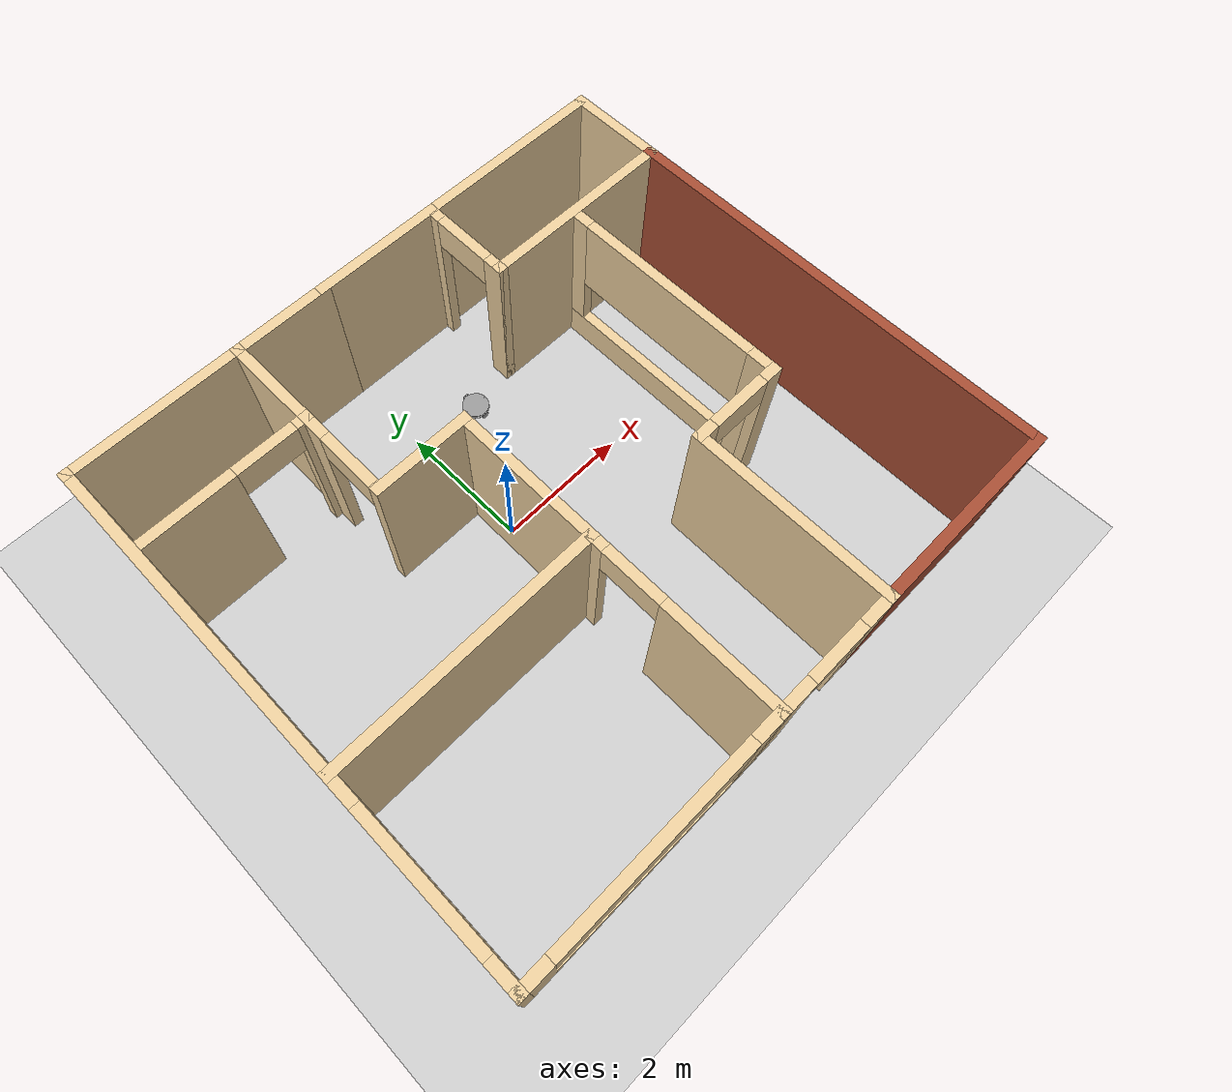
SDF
<sdf version="1.6">
 <world name="default">
  <model name="ground_plane">
   <static>1</static>
   <link name="link">
    <collision name="collision">
     <geometry><plane><normal>0 0 1</normal><size>100 100</size></plane></geometry>
     <surface><friction><ode><mu>100</mu><mu2>50</mu2></ode></friction></surface>
    </collision>
    <visual name="visual">
     <cast_shadows>0</cast_shadows>
     <geometry><plane><normal>0 0 1</normal><size>100 100</size></plane></geometry>
     <material>
      <script><uri>file://media/materials/scripts/gazebo.material</uri><name>Gazebo/Grey</name></script>
     </material>
    </visual>
   </link>
  </model>
  <model name="MyHouse">
   <pose>0.33708 -0.54401 0 0 -0 0</pose>
   <link name="Wall_0">
    <pose>-2.35 -3.85 0 0 -0 0</pose>
    <visual name="Wall_0_Visual_0">
     <pose>-1.7526 0 1.25 0 -0 0</pose>
     <geometry><box><size>0.494799 0.15 2.5</size></box></geometry>
     <material>
      <script><uri>file://media/materials/scripts/gazebo.material</uri><name>Gazebo/Grey</name></script>
      <ambient>0.921569 0.807843 0.615686 1</ambient>
     </material>
     <meta><layer>0</layer></meta>
    </visual>
    <collision name="Wall_0_Collision_0">
     <geometry><box><size>0.494799 0.15 2.5</size></box></geometry>
     <pose>-1.7526 0 1.25 0 -0 0</pose>
    </collision>
    <visual name="Wall_0_Visual_1">
     <pose>0.2474 0 0.25 0 -0 0</pose>
     <geometry><box><size>3.5052 0.15 0.5</size></box></geometry>
     <material>
      <script><uri>file://media/materials/scripts/gazebo.material</uri><name>Gazebo/Grey</name></script>
      <ambient>0.921569 0.807843 0.615686 1</ambient>
     </material>
     <meta><layer>0</layer></meta>
    </visual>
    <collision name="Wall_0_Collision_1">
     <geometry><box><size>3.5052 0.15 0.5</size></box></geometry>
     <pose>0.2474 0 0.25 0 -0 0</pose>
    </collision>
    <visual name="Wall_0_Visual_2">
     <pose>1.7474 0 1.5 0 -0 0</pose>
     <geometry><box><size>0.505201 0.15 2</size></box></geometry>
     <material>
      <script><uri>file://media/materials/scripts/gazebo.material</uri><name>Gazebo/Grey</name></script>
      <ambient>0.921569 0.807843 0.615686 1</ambient>
     </material>
     <meta><layer>0</layer></meta>
    </visual>
    <collision name="Wall_0_Collision_2">
     <geometry><box><size>0.505201 0.15 2</size></box></geometry>
     <pose>1.7474 0 1.5 0 -0 0</pose>
    </collision>
    <visual name="Wall_0_Visual_3">
     <pose>-0.005201 0 1.9 0 -0 0</pose>
     <geometry><box><size>3 0.15 1.2</size></box></geometry>
     <material>
      <script><uri>file://media/materials/scripts/gazebo.material</uri><name>Gazebo/Grey</name></script>
      <ambient>0.921569 0.807843 0.615686 1</ambient>
     </material>
     <meta><layer>0</layer></meta>
    </visual>
    <collision name="Wall_0_Collision_3">
     <geometry><box><size>3 0.15 1.2</size></box></geometry>
     <pose>-0.005201 0 1.9 0 -0 0</pose>
    </collision>
   </link>
   <link name="Wall_12">
    <pose>-4.275 -2.425 0 0 -0 1.5708</pose>
    <visual name="Wall_12_Visual_0">
     <pose>-1.25263 0 1.25 0 -0 0</pose>
     <geometry><box><size>0.494741 0.15 2.5</size></box></geometry>
     <material>
      <script><uri>file://media/materials/scripts/gazebo.material</uri><name>Gazebo/Grey</name></script>
      <ambient>0.921569 0.807843 0.615686 1</ambient>
     </material>
     <meta><layer>0</layer></meta>
    </visual>
    <collision name="Wall_12_Collision_0">
     <geometry><box><size>0.494741 0.15 2.5</size></box></geometry>
     <pose>-1.25263 0 1.25 0 -0 0</pose>
    </collision>
    <visual name="Wall_12_Visual_1">
     <pose>0.247371 0 0.25 0 -0 0</pose>
     <geometry><box><size>2.50526 0.15 0.5</size></box></geometry>
     <material>
      <script><uri>file://media/materials/scripts/gazebo.material</uri><name>Gazebo/Grey</name></script>
      <ambient>0.921569 0.807843 0.615686 1</ambient>
     </material>
     <meta><layer>0</layer></meta>
    </visual>
    <collision name="Wall_12_Collision_1">
     <geometry><box><size>2.50526 0.15 0.5</size></box></geometry>
     <pose>0.247371 0 0.25 0 -0 0</pose>
    </collision>
    <visual name="Wall_12_Visual_2">
     <pose>1.24737 0 1.5 0 -0 0</pose>
     <geometry><box><size>0.505259 0.15 2</size></box></geometry>
     <material>
      <script><uri>file://media/materials/scripts/gazebo.material</uri><name>Gazebo/Grey</name></script>
      <ambient>0.921569 0.807843 0.615686 1</ambient>
     </material>
     <meta><layer>0</layer></meta>
    </visual>
    <collision name="Wall_12_Collision_2">
     <geometry><box><size>0.505259 0.15 2</size></box></geometry>
     <pose>1.24737 0 1.5 0 -0 0</pose>
    </collision>
    <visual name="Wall_12_Visual_3">
     <pose>-0.005259 0 1.9 0 -0 0</pose>
     <geometry><box><size>2 0.15 1.2</size></box></geometry>
     <material>
      <script><uri>file://media/materials/scripts/gazebo.material</uri><name>Gazebo/Grey</name></script>
      <ambient>0.921569 0.807843 0.615686 1</ambient>
     </material>
     <meta><layer>0</layer></meta>
    </visual>
    <collision name="Wall_12_Collision_3">
     <geometry><box><size>2 0.15 1.2</size></box></geometry>
     <pose>-0.005259 0 1.9 0 -0 0</pose>
    </collision>
   </link>
   <link name="Wall_18">
    <collision name="Wall_18_Collision">
     <geometry><box><size>4 0.15 2.5</size></box></geometry>
     <pose>0 0 1.25 0 -0 0</pose>
    </collision>
    <visual name="Wall_18_Visual">
     <pose>0 0 1.25 0 -0 0</pose>
     <geometry><box><size>4 0.15 2.5</size></box></geometry>
     <material>
      <script><uri>file://media/materials/scripts/gazebo.material</uri><name>Gazebo/Grey</name></script>
      <ambient>0.921569 0.807843 0.615686 1</ambient>
     </material>
     <meta><layer>0</layer></meta>
    </visual>
    <pose>-2.35 -1 0 0 -0 0</pose>
   </link>
   <link name="Wall_19">
    <pose>-0.425 -2.425 0 0 0 -1.5708</pose>
    <visual name="Wall_19_Visual_0">
     <pose>-1.34808 0 1.25 0 -0 0</pose>
     <geometry><box><size>0.303841 0.15 2.5</size></box></geometry>
     <material>
      <script><uri>file://media/materials/scripts/gazebo.material</uri><name>Gazebo/Grey</name></script>
      <ambient>0.921569 0.807843 0.615686 1</ambient>
     </material>
     <meta><layer>0</layer></meta>
    </visual>
    <collision name="Wall_19_Collision_0">
     <geometry><box><size>0.303841 0.15 2.5</size></box></geometry>
     <pose>-1.34808 0 1.25 0 -0 0</pose>
    </collision>
    <visual name="Wall_19_Visual_1">
     <pose>0.601921 0 1.25 0 -0 0</pose>
     <geometry><box><size>1.79616 0.15 2.5</size></box></geometry>
     <material>
      <script><uri>file://media/materials/scripts/gazebo.material</uri><name>Gazebo/Grey</name></script>
      <ambient>0.921569 0.807843 0.615686 1</ambient>
     </material>
     <meta><layer>0</layer></meta>
    </visual>
    <collision name="Wall_19_Collision_1">
     <geometry><box><size>1.79616 0.15 2.5</size></box></geometry>
     <pose>0.601921 0 1.25 0 -0 0</pose>
    </collision>
    <visual name="Wall_19_Visual_2">
     <pose>-0.746159 0 2.25 0 -0 0</pose>
     <geometry><box><size>0.9 0.15 0.5</size></box></geometry>
     <material>
      <script><uri>file://media/materials/scripts/gazebo.material</uri><name>Gazebo/Grey</name></script>
      <ambient>0.921569 0.807843 0.615686 1</ambient>
     </material>
     <meta><layer>0</layer></meta>
    </visual>
    <collision name="Wall_19_Collision_2">
     <geometry><box><size>0.9 0.15 0.5</size></box></geometry>
     <pose>-0.746159 0 2.25 0 -0 0</pose>
    </collision>
   </link>
   <link name="Wall_21">
    <pose>0.5 -3.85 0 0 -0 0</pose>
    <visual name="Wall_21_Visual_0">
     <pose>-0.718803 0 1.25 0 -0 0</pose>
     <geometry><box><size>0.562395 0.15 2.5</size></box></geometry>
     <material>
      <script><uri>file://media/materials/scripts/gazebo.material</uri><name>Gazebo/Grey</name></script>
      <ambient>0.921569 0.807843 0.615686 1</ambient>
     </material>
     <meta><layer>0</layer></meta>
    </visual>
    <collision name="Wall_21_Collision_0">
     <geometry><box><size>0.562395 0.15 2.5</size></box></geometry>
     <pose>-0.718803 0 1.25 0 -0 0</pose>
    </collision>
    <visual name="Wall_21_Visual_1">
     <pose>0.731197 0 1.25 0 -0 0</pose>
     <geometry><box><size>0.537605 0.15 2.5</size></box></geometry>
     <material>
      <script><uri>file://media/materials/scripts/gazebo.material</uri><name>Gazebo/Grey</name></script>
      <ambient>0.921569 0.807843 0.615686 1</ambient>
     </material>
     <meta><layer>0</layer></meta>
    </visual>
    <collision name="Wall_21_Collision_1">
     <geometry><box><size>0.537605 0.15 2.5</size></box></geometry>
     <pose>0.731197 0 1.25 0 -0 0</pose>
    </collision>
    <visual name="Wall_21_Visual_2">
     <pose>0.012395 0 2.25 0 -0 0</pose>
     <geometry><box><size>0.9 0.15 0.5</size></box></geometry>
     <material>
      <script><uri>file://media/materials/scripts/gazebo.material</uri><name>Gazebo/Grey</name></script>
      <ambient>0.921569 0.807843 0.615686 1</ambient>
     </material>
     <meta><layer>0</layer></meta>
    </visual>
    <collision name="Wall_21_Collision_2">
     <geometry><box><size>0.9 0.15 0.5</size></box></geometry>
     <pose>0.012395 0 2.25 0 -0 0</pose>
    </collision>
   </link>
   <link name="Wall_22">
    <collision name="Wall_22_Collision">
     <geometry><box><size>3 0.15 2.5</size></box></geometry>
     <pose>0 0 1.25 0 -0 0</pose>
    </collision>
    <visual name="Wall_22_Visual">
     <pose>0 0 1.25 0 -0 0</pose>
     <geometry><box><size>3 0.15 2.5</size></box></geometry>
     <material>
      <script><uri>file://media/materials/scripts/gazebo.material</uri><name>Gazebo/Grey</name></script>
      <ambient>0.921569 0.807843 0.615686 1</ambient>
     </material>
     <meta><layer>0</layer></meta>
    </visual>
    <pose>1.425 -2.425 0 0 -0 1.5708</pose>
   </link>
   <link name="Wall_23">
    <pose>2.1 -1 0 0 -0 0</pose>
    <visual name="Wall_23_Visual_0">
     <pose>-0.586497 0 1.25 0 -0 0</pose>
     <geometry><box><size>0.327005 0.15 2.5</size></box></geometry>
     <material>
      <script><uri>file://media/materials/scripts/gazebo.material</uri><name>Gazebo/Grey</name></script>
      <ambient>0.921569 0.807843 0.615686 1</ambient>
     </material>
     <meta><layer>0</layer></meta>
    </visual>
    <collision name="Wall_23_Collision_0">
     <geometry><box><size>0.327005 0.15 2.5</size></box></geometry>
     <pose>-0.586497 0 1.25 0 -0 0</pose>
    </collision>
    <visual name="Wall_23_Visual_1">
     <pose>0.613503 0 1.25 0 -0 0</pose>
     <geometry><box><size>0.272995 0.15 2.5</size></box></geometry>
     <material>
      <script><uri>file://media/materials/scripts/gazebo.material</uri><name>Gazebo/Grey</name></script>
      <ambient>0.921569 0.807843 0.615686 1</ambient>
     </material>
     <meta><layer>0</layer></meta>
    </visual>
    <collision name="Wall_23_Collision_1">
     <geometry><box><size>0.272995 0.15 2.5</size></box></geometry>
     <pose>0.613503 0 1.25 0 -0 0</pose>
    </collision>
    <visual name="Wall_23_Visual_2">
     <pose>0.027005 0 2.25 0 -0 0</pose>
     <geometry><box><size>0.9 0.15 0.5</size></box></geometry>
     <material>
      <script><uri>file://media/materials/scripts/gazebo.material</uri><name>Gazebo/Grey</name></script>
      <ambient>0.921569 0.807843 0.615686 1</ambient>
     </material>
     <meta><layer>0</layer></meta>
    </visual>
    <collision name="Wall_23_Collision_2">
     <geometry><box><size>0.9 0.15 0.5</size></box></geometry>
     <pose>0.027005 0 2.25 0 -0 0</pose>
    </collision>
   </link>
   <link name="Wall_25">
    <collision name="Wall_25_Collision">
     <geometry><box><size>3 0.15 2.5</size></box></geometry>
     <pose>0 0 1.25 0 -0 0</pose>
    </collision>
    <visual name="Wall_25_Visual">
     <pose>0 0 1.25 0 -0 0</pose>
     <geometry><box><size>3 0.15 2.5</size></box></geometry>
     <material>
      <script><uri>file://media/materials/scripts/gazebo.material</uri><name>Gazebo/Bricks</name></script>
      <ambient>1 1 1 1</ambient>
     </material>
     <meta><layer>0</layer></meta>
    </visual>
    <pose>2.85 -3.85 0 0 -0 0</pose>
   </link>
   <link name="Wall_28">
    <collision name="Wall_28_Collision">
     <geometry><box><size>6.5 0.15 2.5</size></box></geometry>
     <pose>0 0 1.25 0 -0 0</pose>
    </collision>
    <visual name="Wall_28_Visual">
     <pose>0 0 1.25 0 -0 0</pose>
     <geometry><box><size>6.5 0.15 2.5</size></box></geometry>
     <material>
      <script><uri>file://media/materials/scripts/gazebo.material</uri><name>Gazebo/Bricks</name></script>
      <ambient>1 1 1 1</ambient>
     </material>
     <meta><layer>0</layer></meta>
    </visual>
    <pose>4.275 -0.675 0 0 -0 1.5708</pose>
   </link>
   <link name="Wall_31">
    <collision name="Wall_31_Collision">
     <geometry><box><size>1.5 0.15 2.5</size></box></geometry>
     <pose>0 0 1.25 0 -0 0</pose>
    </collision>
    <visual name="Wall_31_Visual">
     <pose>0 0 1.25 0 -0 0</pose>
     <geometry><box><size>1.5 0.15 2.5</size></box></geometry>
     <material>
      <script><uri>file://media/materials/scripts/gazebo.material</uri><name>Gazebo/Grey</name></script>
      <ambient>0.921569 0.807843 0.615686 1</ambient>
     </material>
     <meta><layer>0</layer></meta>
    </visual>
    <pose>4.275 3.175 0 0 -0 1.5708</pose>
   </link>
   <link name="Wall_32">
    <collision name="Wall_32_Collision">
     <geometry><box><size>3 0.15 2.5</size></box></geometry>
     <pose>0 0 1.25 0 -0 0</pose>
    </collision>
    <visual name="Wall_32_Visual">
     <pose>0 0 1.25 0 -0 0</pose>
     <geometry><box><size>3 0.15 2.5</size></box></geometry>
     <material>
      <script><uri>file://media/materials/scripts/gazebo.material</uri><name>Gazebo/Grey</name></script>
      <ambient>0.921569 0.807843 0.615686 1</ambient>
     </material>
     <meta><layer>0</layer></meta>
    </visual>
    <pose>2.85 3.85 0 0 -0 3.14159</pose>
   </link>
   <link name="Wall_33">
    <pose>1.425 3.175 0 0 0 -1.5708</pose>
    <visual name="Wall_33_Visual_0">
     <pose>-0.605329 0 1.25 0 -0 0</pose>
     <geometry><box><size>0.289342 0.15 2.5</size></box></geometry>
     <material>
      <script><uri>file://media/materials/scripts/gazebo.material</uri><name>Gazebo/Grey</name></script>
      <ambient>0.921569 0.807843 0.615686 1</ambient>
     </material>
     <meta><layer>0</layer></meta>
    </visual>
    <collision name="Wall_33_Collision_0">
     <geometry><box><size>0.289342 0.15 2.5</size></box></geometry>
     <pose>-0.605329 0 1.25 0 -0 0</pose>
    </collision>
    <visual name="Wall_33_Visual_1">
     <pose>0.594671 0 1.25 0 -0 0</pose>
     <geometry><box><size>0.310658 0.15 2.5</size></box></geometry>
     <material>
      <script><uri>file://media/materials/scripts/gazebo.material</uri><name>Gazebo/Grey</name></script>
      <ambient>0.921569 0.807843 0.615686 1</ambient>
     </material>
     <meta><layer>0</layer></meta>
    </visual>
    <collision name="Wall_33_Collision_1">
     <geometry><box><size>0.310658 0.15 2.5</size></box></geometry>
     <pose>0.594671 0 1.25 0 -0 0</pose>
    </collision>
    <visual name="Wall_33_Visual_2">
     <pose>-0.010658 0 2.25 0 -0 0</pose>
     <geometry><box><size>0.9 0.15 0.5</size></box></geometry>
     <material>
      <script><uri>file://media/materials/scripts/gazebo.material</uri><name>Gazebo/Grey</name></script>
      <ambient>0.921569 0.807843 0.615686 1</ambient>
     </material>
     <meta><layer>0</layer></meta>
    </visual>
    <collision name="Wall_33_Collision_2">
     <geometry><box><size>0.9 0.15 0.5</size></box></geometry>
     <pose>-0.010658 0 2.25 0 -0 0</pose>
    </collision>
   </link>
   <link name="Wall_34">
    <collision name="Wall_34_Collision">
     <geometry><box><size>3 0.15 2.5</size></box></geometry>
     <pose>0 0 1.25 0 -0 0</pose>
    </collision>
    <visual name="Wall_34_Visual">
     <pose>0 0 1.25 0 -0 0</pose>
     <geometry><box><size>3 0.15 2.5</size></box></geometry>
     <material>
      <script><uri>file://media/materials/scripts/gazebo.material</uri><name>Gazebo/Grey</name></script>
      <ambient>0.921569 0.807843 0.615686 1</ambient>
     </material>
     <meta><layer>0</layer></meta>
    </visual>
    <pose>2.85 2.5 0 0 -0 0</pose>
   </link>
   <link name="Wall_36">
    <pose>2.775 0.675 0 0 -0 1.5708</pose>
    <visual name="Wall_36_Visual_0">
     <pose>-1.52494 0 1.25 0 -0 0</pose>
     <geometry><box><size>0.450112 0.15 2.5</size></box></geometry>
     <material>
      <script><uri>file://media/materials/scripts/gazebo.material</uri><name>Gazebo/Grey</name></script>
      <ambient>0.921569 0.807843 0.615686 1</ambient>
     </material>
     <meta><layer>0</layer></meta>
    </visual>
    <collision name="Wall_36_Collision_0">
     <geometry><box><size>0.450112 0.15 2.5</size></box></geometry>
     <pose>-1.52494 0 1.25 0 -0 0</pose>
    </collision>
    <visual name="Wall_36_Visual_1">
     <pose>0.225056 0 0.25 0 -0 0</pose>
     <geometry><box><size>3.04989 0.15 0.5</size></box></geometry>
     <material>
      <script><uri>file://media/materials/scripts/gazebo.material</uri><name>Gazebo/Grey</name></script>
      <ambient>0.921569 0.807843 0.615686 1</ambient>
     </material>
     <meta><layer>0</layer></meta>
    </visual>
    <collision name="Wall_36_Collision_1">
     <geometry><box><size>3.04989 0.15 0.5</size></box></geometry>
     <pose>0.225056 0 0.25 0 -0 0</pose>
    </collision>
    <visual name="Wall_36_Visual_2">
     <pose>1.62506 0 1.5 0 -0 0</pose>
     <geometry><box><size>0.249888 0.15 2</size></box></geometry>
     <material>
      <script><uri>file://media/materials/scripts/gazebo.material</uri><name>Gazebo/Grey</name></script>
      <ambient>0.921569 0.807843 0.615686 1</ambient>
     </material>
     <meta><layer>0</layer></meta>
    </visual>
    <collision name="Wall_36_Collision_2">
     <geometry><box><size>0.249888 0.15 2</size></box></geometry>
     <pose>1.62506 0 1.5 0 -0 0</pose>
    </collision>
    <visual name="Wall_36_Visual_3">
     <pose>0.100112 0 1.9 0 -0 0</pose>
     <geometry><box><size>2.8 0.15 1.2</size></box></geometry>
     <material>
      <script><uri>file://media/materials/scripts/gazebo.material</uri><name>Gazebo/Grey</name></script>
      <ambient>0.921569 0.807843 0.615686 1</ambient>
     </material>
     <meta><layer>0</layer></meta>
    </visual>
    <collision name="Wall_36_Collision_3">
     <geometry><box><size>2.8 0.15 1.2</size></box></geometry>
     <pose>0.100112 0 1.9 0 -0 0</pose>
    </collision>
   </link>
   <link name="Wall_38">
    <collision name="Wall_38_Collision">
     <geometry><box><size>2 0.15 2.5</size></box></geometry>
     <pose>0 0 1.25 0 -0 0</pose>
    </collision>
    <visual name="Wall_38_Visual">
     <pose>0 0 1.25 0 -0 0</pose>
     <geometry><box><size>2 0.15 2.5</size></box></geometry>
     <material>
      <script><uri>file://media/materials/scripts/gazebo.material</uri><name>Gazebo/Grey</name></script>
      <ambient>0.921569 0.807843 0.615686 1</ambient>
     </material>
     <meta><layer>0</layer></meta>
    </visual>
    <pose>0.5 3.85 0 0 -0 3.14159</pose>
   </link>
   <link name="Wall_39">
    <collision name="Wall_39_Collision">
     <geometry><box><size>1.5 0.15 2.5</size></box></geometry>
     <pose>0 0 1.25 0 -0 0</pose>
    </collision>
    <visual name="Wall_39_Visual">
     <pose>0 0 1.25 0 -0 0</pose>
     <geometry><box><size>1.5 0.15 2.5</size></box></geometry>
     <material>
      <script><uri>file://media/materials/scripts/gazebo.material</uri><name>Gazebo/Grey</name></script>
      <ambient>0.921569 0.807843 0.615686 1</ambient>
     </material>
     <meta><layer>0</layer></meta>
    </visual>
    <pose>-1.1 3.85 0 0 -0 3.14159</pose>
   </link>
   <link name="Wall_43">
    <collision name="Wall_43_Collision">
     <geometry><box><size>1.5 0.15 2.5</size></box></geometry>
     <pose>0 0 1.25 0 -0 0</pose>
    </collision>
    <visual name="Wall_43_Visual">
     <pose>0 0 1.25 0 -0 0</pose>
     <geometry><box><size>1.5 0.15 2.5</size></box></geometry>
     <material>
      <script><uri>file://media/materials/scripts/gazebo.material</uri><name>Gazebo/Grey</name></script>
      <ambient>0.921569 0.807843 0.615686 1</ambient>
     </material>
     <meta><layer>0</layer></meta>
    </visual>
    <pose>-1.775 3.175 0 0 -0 1.5708</pose>
   </link>
   <link name="Wall_48">
    <collision name="Wall_48_Collision">
     <geometry><box><size>5 0.15 2.5</size></box></geometry>
     <pose>0 0 1.25 0 -0 0</pose>
    </collision>
    <visual name="Wall_48_Visual">
     <pose>0 0 1.25 0 -0 0</pose>
     <geometry><box><size>5 0.15 2.5</size></box></geometry>
     <material>
      <script><uri>file://media/materials/scripts/gazebo.material</uri><name>Gazebo/Grey</name></script>
      <ambient>0.921569 0.807843 0.615686 1</ambient>
     </material>
     <meta><layer>0</layer></meta>
    </visual>
    <pose>-4.275 1.425 0 0 -0 1.5708</pose>
   </link>
   <link name="Wall_49">
    <collision name="Wall_49_Collision">
     <geometry><box><size>2.65 0.15 2.5</size></box></geometry>
     <pose>0 0 1.25 0 -0 0</pose>
    </collision>
    <visual name="Wall_49_Visual">
     <pose>0 0 1.25 0 -0 0</pose>
     <geometry><box><size>2.65 0.15 2.5</size></box></geometry>
     <material>
      <script><uri>file://media/materials/scripts/gazebo.material</uri><name>Gazebo/Grey</name></script>
      <ambient>0.921569 0.807843 0.615686 1</ambient>
     </material>
     <meta><layer>0</layer></meta>
    </visual>
    <pose>-3.025 3.85 0 0 -0 0</pose>
   </link>
   <link name="Wall_51">
    <pose>-2.95 2.5 0 0 -0 3.14159</pose>
    <visual name="Wall_51_Visual_0">
     <pose>-1.12577 0 1.25 0 -0 0</pose>
     <geometry><box><size>0.248452 0.15 2.5</size></box></geometry>
     <material>
      <script><uri>file://media/materials/scripts/gazebo.material</uri><name>Gazebo/Grey</name></script>
      <ambient>0.921569 0.807843 0.615686 1</ambient>
     </material>
     <meta><layer>0</layer></meta>
    </visual>
    <collision name="Wall_51_Collision_0">
     <geometry><box><size>0.248452 0.15 2.5</size></box></geometry>
     <pose>-1.12577 0 1.25 0 -0 0</pose>
    </collision>
    <visual name="Wall_51_Visual_1">
     <pose>0.574226 0 1.25 0 -0 0</pose>
     <geometry><box><size>1.35155 0.15 2.5</size></box></geometry>
     <material>
      <script><uri>file://media/materials/scripts/gazebo.material</uri><name>Gazebo/Grey</name></script>
      <ambient>0.921569 0.807843 0.615686 1</ambient>
     </material>
     <meta><layer>0</layer></meta>
    </visual>
    <collision name="Wall_51_Collision_1">
     <geometry><box><size>1.35155 0.15 2.5</size></box></geometry>
     <pose>0.574226 0 1.25 0 -0 0</pose>
    </collision>
    <visual name="Wall_51_Visual_2">
     <pose>-0.551548 0 2.25 0 -0 0</pose>
     <geometry><box><size>0.9 0.15 0.5</size></box></geometry>
     <material>
      <script><uri>file://media/materials/scripts/gazebo.material</uri><name>Gazebo/Grey</name></script>
      <ambient>0.921569 0.807843 0.615686 1</ambient>
     </material>
     <meta><layer>0</layer></meta>
    </visual>
    <collision name="Wall_51_Collision_2">
     <geometry><box><size>0.9 0.15 0.5</size></box></geometry>
     <pose>-0.551548 0 2.25 0 -0 0</pose>
    </collision>
   </link>
   <link name="Wall_53">
    <pose>-1.775 1.825 0 0 0 -1.5708</pose>
    <visual name="Wall_53_Visual_0">
     <pose>-0.532233 0 1.25 0 -0 0</pose>
     <geometry><box><size>0.435535 0.15 2.5</size></box></geometry>
     <material>
      <script><uri>file://media/materials/scripts/gazebo.material</uri><name>Gazebo/Grey</name></script>
      <ambient>0.921569 0.807843 0.615686 1</ambient>
     </material>
     <meta><layer>0</layer></meta>
    </visual>
    <collision name="Wall_53_Collision_0">
     <geometry><box><size>0.435535 0.15 2.5</size></box></geometry>
     <pose>-0.532233 0 1.25 0 -0 0</pose>
    </collision>
    <visual name="Wall_53_Visual_1">
     <pose>0.667767 0 1.25 0 -0 0</pose>
     <geometry><box><size>0.164465 0.15 2.5</size></box></geometry>
     <material>
      <script><uri>file://media/materials/scripts/gazebo.material</uri><name>Gazebo/Grey</name></script>
      <ambient>0.921569 0.807843 0.615686 1</ambient>
     </material>
     <meta><layer>0</layer></meta>
    </visual>
    <collision name="Wall_53_Collision_1">
     <geometry><box><size>0.164465 0.15 2.5</size></box></geometry>
     <pose>0.667767 0 1.25 0 -0 0</pose>
    </collision>
    <visual name="Wall_53_Visual_2">
     <pose>0.135535 0 2.25 0 -0 0</pose>
     <geometry><box><size>0.9 0.15 0.5</size></box></geometry>
     <material>
      <script><uri>file://media/materials/scripts/gazebo.material</uri><name>Gazebo/Grey</name></script>
      <ambient>0.921569 0.807843 0.615686 1</ambient>
     </material>
     <meta><layer>0</layer></meta>
    </visual>
    <collision name="Wall_53_Collision_2">
     <geometry><box><size>0.9 0.15 0.5</size></box></geometry>
     <pose>0.135535 0 2.25 0 -0 0</pose>
    </collision>
   </link>
   <link name="Wall_54">
    <collision name="Wall_54_Collision">
     <geometry><box><size>1.5 0.15 2.5</size></box></geometry>
     <pose>0 0 1.25 0 -0 0</pose>
    </collision>
    <visual name="Wall_54_Visual">
     <pose>0 0 1.25 0 -0 0</pose>
     <geometry><box><size>1.5 0.15 2.5</size></box></geometry>
     <material>
      <script><uri>file://media/materials/scripts/gazebo.material</uri><name>Gazebo/Grey</name></script>
      <ambient>0.921569 0.807843 0.615686 1</ambient>
     </material>
     <meta><layer>0</layer></meta>
    </visual>
    <pose>-1.1 1.15 0 0 -0 0</pose>
   </link>
   <link name="Wall_55">
    <collision name="Wall_55_Collision">
     <geometry><box><size>2.3 0.15 2.5</size></box></geometry>
     <pose>0 0 1.25 0 -0 0</pose>
    </collision>
    <visual name="Wall_55_Visual">
     <pose>0 0 1.25 0 -0 0</pose>
     <geometry><box><size>2.3 0.15 2.5</size></box></geometry>
     <material>
      <script><uri>file://media/materials/scripts/gazebo.material</uri><name>Gazebo/Grey</name></script>
      <ambient>0.921569 0.807843 0.615686 1</ambient>
     </material>
     <meta><layer>0</layer></meta>
    </visual>
    <pose>-0.425 0.075 0 0 0 -1.5708</pose>
   </link>
   <static>1</static>
  </model>
  <model name="MyRobot_0">
   <link name="link_0">
    <pose>0 0 -0.02125 0 -0 0</pose>
    <inertial>
     <mass>1</mass>
     <inertia><ixx>0.145833</ixx><ixy>0</ixy><ixz>0</ixz><iyy>0.145833</iyy><iyz>0</iyz><izz>0.125</izz></inertia>
    </inertial>
    <visual name="visual">
     <geometry><cylinder><radius>0.2</radius><length>0.01</length></cylinder></geometry>
     <material>
      <lighting>1</lighting>
      <script><uri>file://media/materials/scripts/gazebo.material</uri><name>Gazebo/Grey</name></script>
      <ambient>0.3 0.3 0.3 1</ambient>
      <diffuse>0.7 0.7 0.7 1</diffuse>
      <specular>0.01 0.01 0.01 1</specular>
      <emissive>0 0 0 1</emissive>
      <shader type="vertex"><normal_map>__default__</normal_map></shader>
     </material>
    </visual>
    <collision name="collision">
     <geometry><cylinder><radius>0.2</radius><length>0.01</length></cylinder></geometry>
     <surface>
      <friction>
       <ode><mu>1</mu><mu2>1</mu2><fdir1>0 0 0</fdir1><slip1>0</slip1><slip2>0</slip2></ode>
       <torsional>
        <coefficient>1</coefficient>
        <patch_radius>0</patch_radius>
        <surface_radius>0</surface_radius>
        <use_patch_radius>1</use_patch_radius>
        <ode><slip>0</slip></ode>
       </torsional>
      </friction>
      <bounce><restitution_coefficient>0</restitution_coefficient><threshold>1e+06</threshold></bounce>
      <contact>
       <collide_without_contact>0</collide_without_contact>
       <collide_without_contact_bitmask>1</collide_without_contact_bitmask>
       <collide_bitmask>1</collide_bitmask>
       <ode>
        <soft_cfm>0</soft_cfm>
        <soft_erp>0.2</soft_erp>
        <kp>1e+13</kp>
        <kd>1</kd>
        <max_vel>0.01</max_vel>
        <min_depth>0</min_depth>
       </ode>
       <bullet>
        <split_impulse>1</split_impulse>
        <split_impulse_penetration_threshold>-0.01</split_impulse_penetration_threshold>
        <soft_cfm>0</soft_cfm>
        <soft_erp>0.2</soft_erp>
        <kp>1e+13</kp>
        <kd>1</kd>
       </bullet>
      </contact>
     </surface>
    </collision>
   </link>
   <link name="link_0_clone">
    <pose>0 0 0.02875 0 -0 0</pose>
    <inertial>
     <mass>1</mass>
     <inertia><ixx>0.145833</ixx><ixy>0</ixy><ixz>0</ixz><iyy>0.145833</iyy><iyz>0</iyz><izz>0.125</izz></inertia>
    </inertial>
    <visual name="visual">
     <geometry><cylinder><radius>0.2</radius><length>0.01</length></cylinder></geometry>
     <material>
      <lighting>1</lighting>
      <script><uri>file://media/materials/scripts/gazebo.material</uri><name>Gazebo/Grey</name></script>
      <ambient>0.3 0.3 0.3 1</ambient>
      <diffuse>0.7 0.7 0.7 1</diffuse>
      <specular>0.01 0.01 0.01 1</specular>
      <emissive>0 0 0 1</emissive>
      <shader type="vertex"><normal_map>__default__</normal_map></shader>
     </material>
    </visual>
    <collision name="collision">
     <geometry><cylinder><radius>0.2</radius><length>0.01</length></cylinder></geometry>
     <surface>
      <friction>
       <ode><mu>1</mu><mu2>1</mu2><fdir1>0 0 0</fdir1><slip1>0</slip1><slip2>0</slip2></ode>
       <torsional>
        <coefficient>1</coefficient>
        <patch_radius>0</patch_radius>
        <surface_radius>0</surface_radius>
        <use_patch_radius>1</use_patch_radius>
        <ode><slip>0</slip></ode>
       </torsional>
      </friction>
      <bounce><restitution_coefficient>0</restitution_coefficient><threshold>1e+06</threshold></bounce>
      <contact>
       <collide_without_contact>0</collide_without_contact>
       <collide_without_contact_bitmask>1</collide_without_contact_bitmask>
       <collide_bitmask>1</collide_bitmask>
       <ode>
        <soft_cfm>0</soft_cfm>
        <soft_erp>0.2</soft_erp>
        <kp>1e+13</kp>
        <kd>1</kd>
        <max_vel>0.01</max_vel>
        <min_depth>0</min_depth>
       </ode>
       <bullet>
        <split_impulse>1</split_impulse>
        <split_impulse_penetration_threshold>-0.01</split_impulse_penetration_threshold>
        <soft_cfm>0</soft_cfm>
        <soft_erp>0.2</soft_erp>
        <kp>1e+13</kp>
        <kd>1</kd>
       </bullet>
      </contact>
     </surface>
    </collision>
   </link>
   <link name="link_1">
    <pose>0.18 0 -0.00125 0 -0 0</pose>
    <inertial>
     <mass>1</mass>
     <inertia><ixx>0.145833</ixx><ixy>0</ixy><ixz>0</ixz><iyy>0.145833</iyy><iyz>0</iyz><izz>0.125</izz></inertia>
    </inertial>
    <visual name="visual">
     <geometry><cylinder><radius>0.01</radius><length>0.1</length></cylinder></geometry>
     <material>
      <lighting>1</lighting>
      <script><uri>file://media/materials/scripts/gazebo.material</uri><name>Gazebo/Grey</name></script>
      <ambient>0.3 0.3 0.3 1</ambient>
      <diffuse>0.7 0.7 0.7 1</diffuse>
      <specular>0.01 0.01 0.01 1</specular>
      <emissive>0 0 0 1</emissive>
      <shader type="vertex"><normal_map>__default__</normal_map></shader>
     </material>
    </visual>
    <collision name="collision">
     <geometry><cylinder><radius>0.01</radius><length>0.1</length></cylinder></geometry>
     <surface>
      <friction>
       <ode><mu>1</mu><mu2>1</mu2><fdir1>0 0 0</fdir1><slip1>0</slip1><slip2>0</slip2></ode>
       <torsional>
        <coefficient>1</coefficient>
        <patch_radius>0</patch_radius>
        <surface_radius>0</surface_radius>
        <use_patch_radius>1</use_patch_radius>
        <ode><slip>0</slip></ode>
       </torsional>
      </friction>
      <bounce><restitution_coefficient>0</restitution_coefficient><threshold>1e+06</threshold></bounce>
      <contact>
       <collide_without_contact>0</collide_without_contact>
       <collide_without_contact_bitmask>1</collide_without_contact_bitmask>
       <collide_bitmask>1</collide_bitmask>
       <ode>
        <soft_cfm>0</soft_cfm>
        <soft_erp>0.2</soft_erp>
        <kp>1e+13</kp>
        <kd>1</kd>
        <max_vel>0.01</max_vel>
        <min_depth>0</min_depth>
       </ode>
       <bullet>
        <split_impulse>1</split_impulse>
        <split_impulse_penetration_threshold>-0.01</split_impulse_penetration_threshold>
        <soft_cfm>0</soft_cfm>
        <soft_erp>0.2</soft_erp>
        <kp>1e+13</kp>
        <kd>1</kd>
       </bullet>
      </contact>
     </surface>
    </collision>
   </link>
   <link name="link_1_clone">
    <pose>-0.18 0 -0.00125 0 -0 0</pose>
    <inertial>
     <mass>1</mass>
     <inertia><ixx>0.145833</ixx><ixy>0</ixy><ixz>0</ixz><iyy>0.145833</iyy><iyz>0</iyz><izz>0.125</izz></inertia>
    </inertial>
    <visual name="visual">
     <geometry><cylinder><radius>0.01</radius><length>0.1</length></cylinder></geometry>
     <material>
      <lighting>1</lighting>
      <script><uri>file://media/materials/scripts/gazebo.material</uri><name>Gazebo/Grey</name></script>
      <ambient>0.3 0.3 0.3 1</ambient>
      <diffuse>0.7 0.7 0.7 1</diffuse>
      <specular>0.01 0.01 0.01 1</specular>
      <emissive>0 0 0 1</emissive>
      <shader type="vertex"><normal_map>__default__</normal_map></shader>
     </material>
    </visual>
    <collision name="collision">
     <geometry><cylinder><radius>0.01</radius><length>0.1</length></cylinder></geometry>
     <surface>
      <friction>
       <ode><mu>1</mu><mu2>1</mu2><fdir1>0 0 0</fdir1><slip1>0</slip1><slip2>0</slip2></ode>
       <torsional>
        <coefficient>1</coefficient>
        <patch_radius>0</patch_radius>
        <surface_radius>0</surface_radius>
        <use_patch_radius>1</use_patch_radius>
        <ode><slip>0</slip></ode>
       </torsional>
      </friction>
      <bounce><restitution_coefficient>0</restitution_coefficient><threshold>1e+06</threshold></bounce>
      <contact>
       <collide_without_contact>0</collide_without_contact>
       <collide_without_contact_bitmask>1</collide_without_contact_bitmask>
       <collide_bitmask>1</collide_bitmask>
       <ode>
        <soft_cfm>0</soft_cfm>
        <soft_erp>0.2</soft_erp>
        <kp>1e+13</kp>
        <kd>1</kd>
        <max_vel>0.01</max_vel>
        <min_depth>0</min_depth>
       </ode>
       <bullet>
        <split_impulse>1</split_impulse>
        <split_impulse_penetration_threshold>-0.01</split_impulse_penetration_threshold>
        <soft_cfm>0</soft_cfm>
        <soft_erp>0.2</soft_erp>
        <kp>1e+13</kp>
        <kd>1</kd>
       </bullet>
      </contact>
     </surface>
    </collision>
   </link>
   <link name="link_2">
    <pose>0 0.19 -0.00125 0 -0 0</pose>
    <inertial>
     <mass>1</mass>
     <inertia>
      <ixx>0.166667</ixx>
      <ixy>0</ixy>
      <ixz>0</ixz>
      <iyy>0.166667</iyy>
      <iyz>0</iyz>
      <izz>0.166667</izz>
     </inertia>
    </inertial>
    <visual name="visual">
     <geometry><box><size>0.05 0.02 0.05</size></box></geometry>
     <material>
      <lighting>1</lighting>
      <script><uri>file://media/materials/scripts/gazebo.material</uri><name>Gazebo/Grey</name></script>
      <ambient>0.3 0.3 0.3 1</ambient>
      <diffuse>0.7 0.7 0.7 1</diffuse>
      <specular>0.01 0.01 0.01 1</specular>
      <emissive>0 0 0 1</emissive>
      <shader type="vertex"><normal_map>__default__</normal_map></shader>
     </material>
    </visual>
    <collision name="collision">
     <geometry><box><size>0.05 0.02 0.05</size></box></geometry>
     <surface>
      <friction>
       <ode><mu>1</mu><mu2>1</mu2><fdir1>0 0 0</fdir1><slip1>0</slip1><slip2>0</slip2></ode>
       <torsional>
        <coefficient>1</coefficient>
        <patch_radius>0</patch_radius>
        <surface_radius>0</surface_radius>
        <use_patch_radius>1</use_patch_radius>
        <ode><slip>0</slip></ode>
       </torsional>
      </friction>
      <bounce><restitution_coefficient>0</restitution_coefficient><threshold>1e+06</threshold></bounce>
      <contact>
       <collide_without_contact>0</collide_without_contact>
       <collide_without_contact_bitmask>1</collide_without_contact_bitmask>
       <collide_bitmask>1</collide_bitmask>
       <ode>
        <soft_cfm>0</soft_cfm>
        <soft_erp>0.2</soft_erp>
        <kp>1e+13</kp>
        <kd>1</kd>
        <max_vel>0.01</max_vel>
        <min_depth>0</min_depth>
       </ode>
       <bullet>
        <split_impulse>1</split_impulse>
        <split_impulse_penetration_threshold>-0.01</split_impulse_penetration_threshold>
        <soft_cfm>0</soft_cfm>
        <soft_erp>0.2</soft_erp>
        <kp>1e+13</kp>
        <kd>1</kd>
       </bullet>
      </contact>
     </surface>
    </collision>
   </link>
   <link name="link_2_clone">
    <pose>0 -0.19 -0.00125 0 -0 0</pose>
    <inertial>
     <mass>1</mass>
     <inertia>
      <ixx>0.166667</ixx>
      <ixy>0</ixy>
      <ixz>0</ixz>
      <iyy>0.166667</iyy>
      <iyz>0</iyz>
      <izz>0.166667</izz>
     </inertia>
    </inertial>
    <visual name="visual">
     <geometry><box><size>0.05 0.02 0.05</size></box></geometry>
     <material>
      <lighting>1</lighting>
      <script><uri>file://media/materials/scripts/gazebo.material</uri><name>Gazebo/Grey</name></script>
      <ambient>0.3 0.3 0.3 1</ambient>
      <diffuse>0.7 0.7 0.7 1</diffuse>
      <specular>0.01 0.01 0.01 1</specular>
      <emissive>0 0 0 1</emissive>
      <shader type="vertex"><normal_map>__default__</normal_map></shader>
     </material>
    </visual>
    <collision name="collision">
     <geometry><box><size>0.05 0.02 0.05</size></box></geometry>
     <surface>
      <friction>
       <ode><mu>1</mu><mu2>1</mu2><fdir1>0 0 0</fdir1><slip1>0</slip1><slip2>0</slip2></ode>
       <torsional>
        <coefficient>1</coefficient>
        <patch_radius>0</patch_radius>
        <surface_radius>0</surface_radius>
        <use_patch_radius>1</use_patch_radius>
        <ode><slip>0</slip></ode>
       </torsional>
      </friction>
      <bounce><restitution_coefficient>0</restitution_coefficient><threshold>1e+06</threshold></bounce>
      <contact>
       <collide_without_contact>0</collide_without_contact>
       <collide_without_contact_bitmask>1</collide_without_contact_bitmask>
       <collide_bitmask>1</collide_bitmask>
       <ode>
        <soft_cfm>0</soft_cfm>
        <soft_erp>0.2</soft_erp>
        <kp>1e+13</kp>
        <kd>1</kd>
        <max_vel>0.01</max_vel>
        <min_depth>0</min_depth>
       </ode>
       <bullet>
        <split_impulse>1</split_impulse>
        <split_impulse_penetration_threshold>-0.01</split_impulse_penetration_threshold>
        <soft_cfm>0</soft_cfm>
        <soft_erp>0.2</soft_erp>
        <kp>1e+13</kp>
        <kd>1</kd>
       </bullet>
      </contact>
     </surface>
    </collision>
   </link>
   <link name="link_3">
    <pose>0 -0.21 -0.00125 1.5708 -0 0</pose>
    <inertial>
     <mass>1</mass>
     <inertia><ixx>0.145833</ixx><ixy>0</ixy><ixz>0</ixz><iyy>0.145833</iyy><iyz>0</iyz><izz>0.125</izz></inertia>
    </inertial>
    <visual name="visual">
     <geometry><cylinder><radius>0.055</radius><length>0.02</length></cylinder></geometry>
     <material>
      <lighting>1</lighting>
      <script><uri>file://media/materials/scripts/gazebo.material</uri><name>Gazebo/Grey</name></script>
      <ambient>0.3 0.3 0.3 1</ambient>
      <diffuse>0.7 0.7 0.7 1</diffuse>
      <specular>0.01 0.01 0.01 1</specular>
      <emissive>0 0 0 1</emissive>
      <shader type="vertex"><normal_map>__default__</normal_map></shader>
     </material>
    </visual>
    <collision name="collision">
     <geometry><cylinder><radius>0.055</radius><length>0.02</length></cylinder></geometry>
     <surface>
      <friction>
       <ode><mu>1</mu><mu2>1</mu2><fdir1>0 0 0</fdir1><slip1>0</slip1><slip2>0</slip2></ode>
       <torsional>
        <coefficient>1</coefficient>
        <patch_radius>0</patch_radius>
        <surface_radius>0</surface_radius>
        <use_patch_radius>1</use_patch_radius>
        <ode><slip>0</slip></ode>
       </torsional>
      </friction>
      <bounce><restitution_coefficient>0</restitution_coefficient><threshold>1e+06</threshold></bounce>
      <contact>
       <collide_without_contact>0</collide_without_contact>
       <collide_without_contact_bitmask>1</collide_without_contact_bitmask>
       <collide_bitmask>1</collide_bitmask>
       <ode>
        <soft_cfm>0</soft_cfm>
        <soft_erp>0.2</soft_erp>
        <kp>1e+13</kp>
        <kd>1</kd>
        <max_vel>0.01</max_vel>
        <min_depth>0</min_depth>
       </ode>
       <bullet>
        <split_impulse>1</split_impulse>
        <split_impulse_penetration_threshold>-0.01</split_impulse_penetration_threshold>
        <soft_cfm>0</soft_cfm>
        <soft_erp>0.2</soft_erp>
        <kp>1e+13</kp>
        <kd>1</kd>
       </bullet>
      </contact>
     </surface>
    </collision>
   </link>
   <link name="link_3_clone">
    <pose>0 0.21 -0.00125 -1.5708 0 0</pose>
    <inertial>
     <mass>1</mass>
     <inertia><ixx>0.145833</ixx><ixy>0</ixy><ixz>0</ixz><iyy>0.145833</iyy><iyz>0</iyz><izz>0.125</izz></inertia>
    </inertial>
    <visual name="visual">
     <geometry><cylinder><radius>0.055</radius><length>0.02</length></cylinder></geometry>
     <material>
      <lighting>1</lighting>
      <script><uri>file://media/materials/scripts/gazebo.material</uri><name>Gazebo/Grey</name></script>
      <ambient>0.3 0.3 0.3 1</ambient>
      <diffuse>0.7 0.7 0.7 1</diffuse>
      <specular>0.01 0.01 0.01 1</specular>
      <emissive>0 0 0 1</emissive>
      <shader type="vertex"><normal_map>__default__</normal_map></shader>
     </material>
    </visual>
    <collision name="collision">
     <geometry><cylinder><radius>0.055</radius><length>0.02</length></cylinder></geometry>
     <surface>
      <friction>
       <ode><mu>1</mu><mu2>1</mu2><fdir1>0 0 0</fdir1><slip1>0</slip1><slip2>0</slip2></ode>
       <torsional>
        <coefficient>1</coefficient>
        <patch_radius>0</patch_radius>
        <surface_radius>0</surface_radius>
        <use_patch_radius>1</use_patch_radius>
        <ode><slip>0</slip></ode>
       </torsional>
      </friction>
      <bounce><restitution_coefficient>0</restitution_coefficient><threshold>1e+06</threshold></bounce>
      <contact>
       <collide_without_contact>0</collide_without_contact>
       <collide_without_contact_bitmask>1</collide_without_contact_bitmask>
       <collide_bitmask>1</collide_bitmask>
       <ode>
        <soft_cfm>0</soft_cfm>
        <soft_erp>0.2</soft_erp>
        <kp>1e+13</kp>
        <kd>1</kd>
        <max_vel>0.01</max_vel>
        <min_depth>0</min_depth>
       </ode>
       <bullet>
        <split_impulse>1</split_impulse>
        <split_impulse_penetration_threshold>-0.01</split_impulse_penetration_threshold>
        <soft_cfm>0</soft_cfm>
        <soft_erp>0.2</soft_erp>
        <kp>1e+13</kp>
        <kd>1</kd>
       </bullet>
      </contact>
     </surface>
    </collision>
   </link>
   <joint name="link_0_JOINT_1" type="fixed">
    <parent>link_0</parent>
    <child>link_1</child>
    <physics>
     <ode><limit><cfm>0</cfm><erp>0.2</erp></limit><suspension><cfm>0</cfm><erp>0.2</erp></suspension></ode>
    </physics>
   </joint>
   <joint name="link_0_JOINT_2" type="fixed">
    <parent>link_0</parent>
    <child>link_1_clone</child>
    <physics>
     <ode><limit><cfm>0</cfm><erp>0.2</erp></limit><suspension><cfm>0</cfm><erp>0.2</erp></suspension></ode>
    </physics>
   </joint>
   <joint name="link_0_JOINT_4" type="fixed">
    <parent>link_0</parent>
    <child>link_2</child>
    <physics>
     <ode><limit><cfm>0</cfm><erp>0.2</erp></limit><suspension><cfm>0</cfm><erp>0.2</erp></suspension></ode>
    </physics>
   </joint>
   <joint name="link_0_JOINT_5" type="fixed">
    <parent>link_0</parent>
    <child>link_2_clone</child>
    <physics>
     <ode><limit><cfm>0</cfm><erp>0.2</erp></limit><suspension><cfm>0</cfm><erp>0.2</erp></suspension></ode>
    </physics>
   </joint>
   <joint name="link_0_clone_JOINT_3" type="fixed">
    <parent>link_0_clone</parent>
    <child>link_0</child>
    <physics>
     <ode><limit><cfm>0</cfm><erp>0.2</erp></limit><suspension><cfm>0</cfm><erp>0.2</erp></suspension></ode>
    </physics>
   </joint>
   <joint name="link_2_JOINT_7" type="revolute">
    <parent>link_2</parent>
    <child>link_3_clone</child>
    <axis>
     <xyz>0 0 1</xyz>
     <use_parent_model_frame>0</use_parent_model_frame>
     <limit>
      <lower>-1.79769e+308</lower>
      <upper>1.79769e+308</upper>
      <effort>-1</effort>
      <velocity>-1</velocity>
     </limit>
     <dynamics>
      <spring_reference>0</spring_reference>
      <spring_stiffness>0</spring_stiffness>
      <damping>0</damping>
     </dynamics>
    </axis>
    <physics>
     <ode><limit><cfm>0</cfm><erp>0.2</erp></limit><suspension><cfm>0</cfm><erp>0.2</erp></suspension></ode>
    </physics>
   </joint>
   <joint name="link_2_clone_JOINT_6" type="revolute">
    <parent>link_2_clone</parent>
    <child>link_3</child>
    <axis>
     <xyz>0 0 1</xyz>
     <use_parent_model_frame>0</use_parent_model_frame>
     <limit>
      <lower>-1.79769e+308</lower>
      <upper>1.79769e+308</upper>
      <effort>-1</effort>
      <velocity>-1</velocity>
     </limit>
     <dynamics>
      <spring_reference>0</spring_reference>
      <spring_stiffness>0</spring_stiffness>
      <damping>0</damping>
     </dynamics>
    </axis>
    <physics>
     <ode><limit><cfm>0</cfm><erp>0.2</erp></limit><suspension><cfm>0</cfm><erp>0.2</erp></suspension></ode>
    </physics>
   </joint>
   <static>0</static>
   <pose>1.00351 1.83932 0.056241 1e-06 -0.023255 0.001803</pose>
  </model>
 </world>
</sdf>
